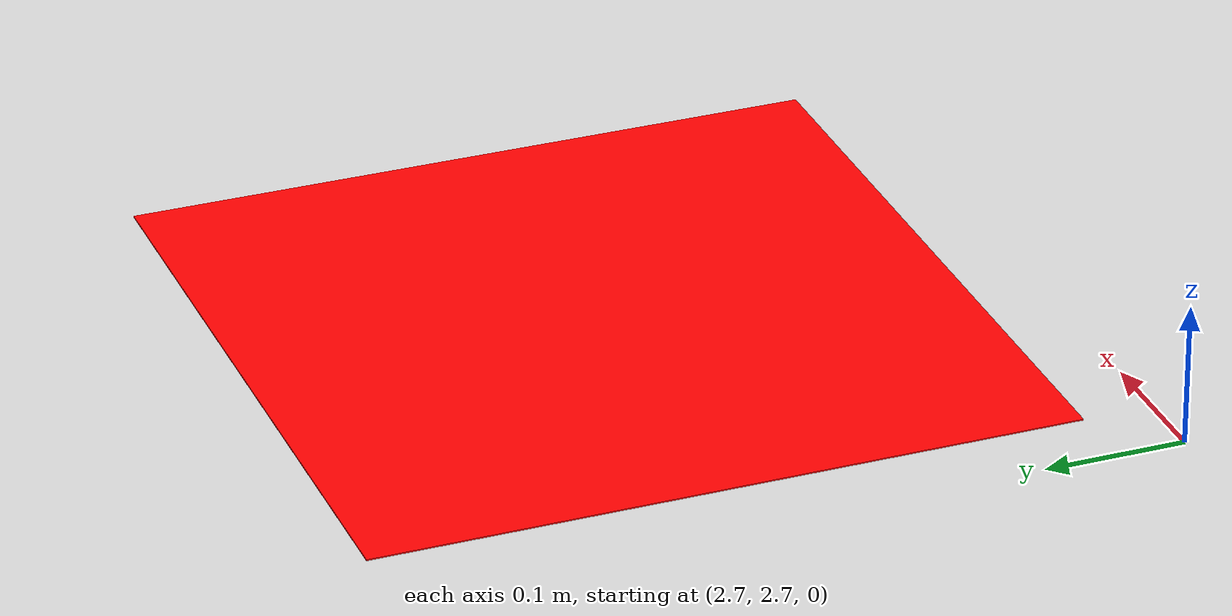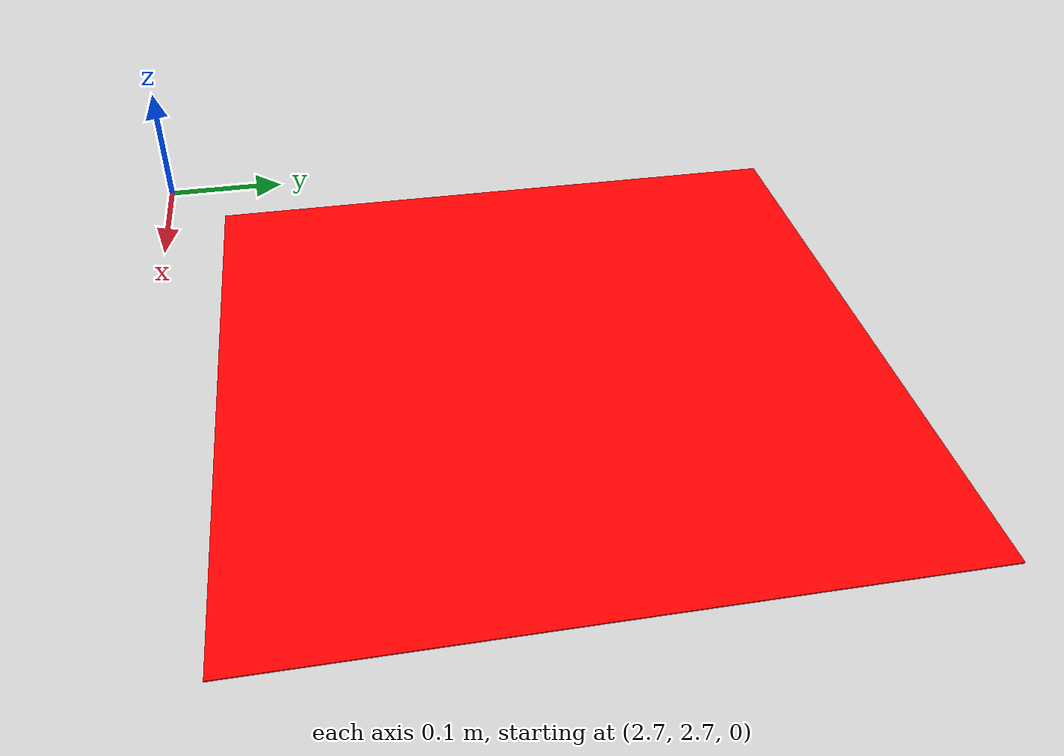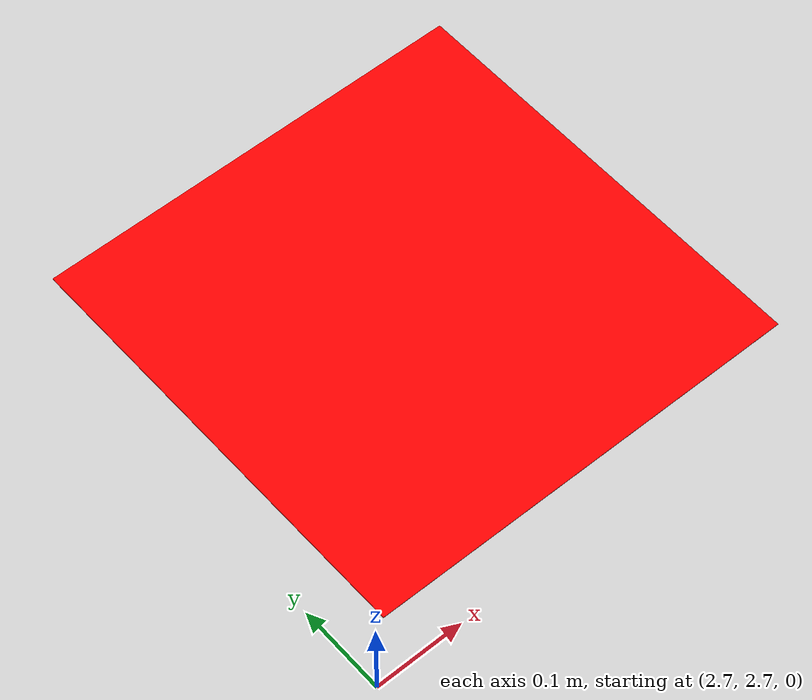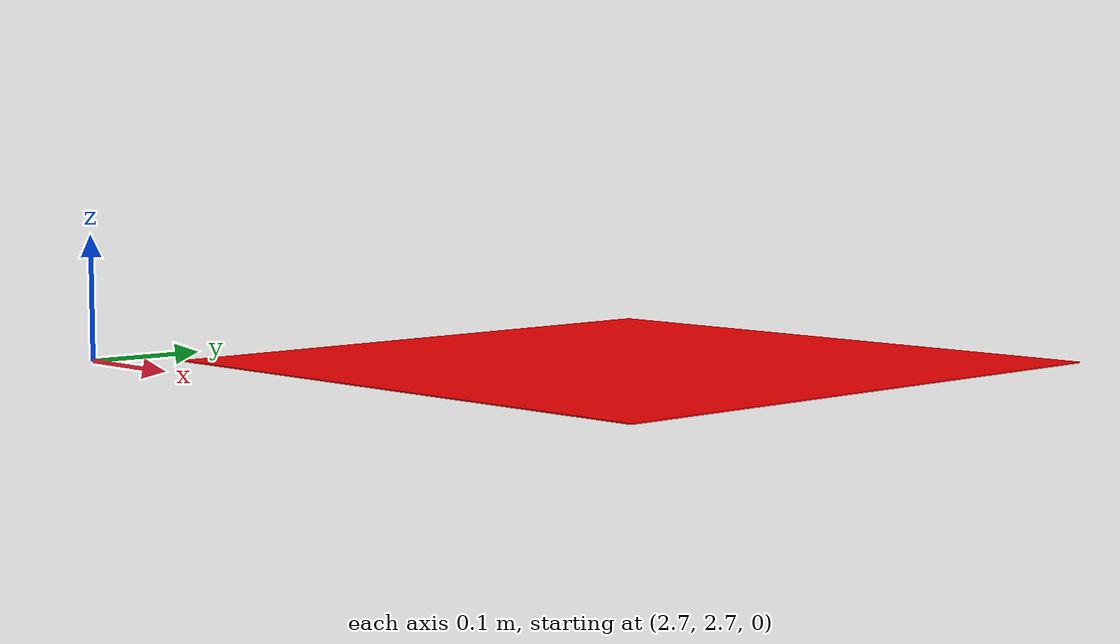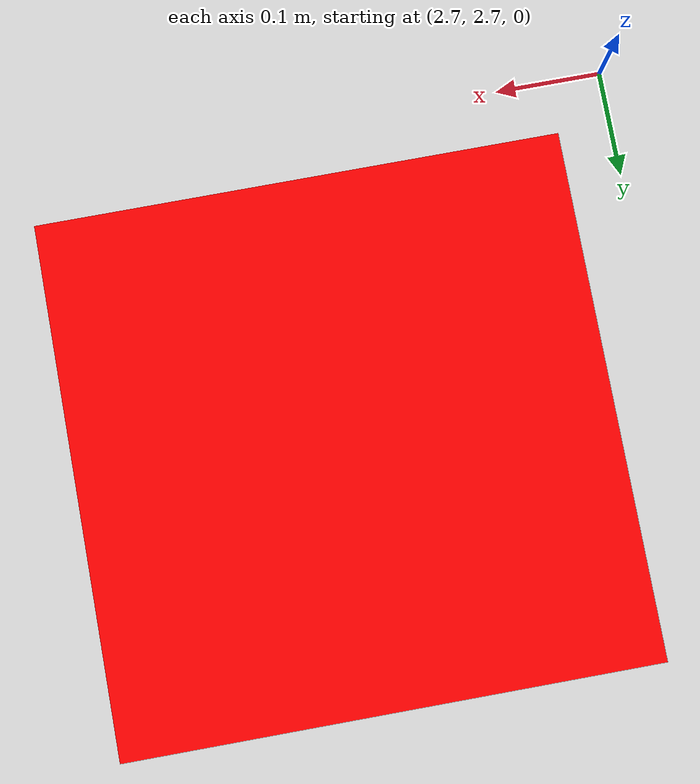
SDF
<?xml version='1.0'?>
<sdf version='1.6'>
  <model name='goal_box'>
    <pose frame=''>3 3 0 0 -0 -1.5708</pose>
    <link name='goal_box'>
      <visual name='goal_box'>
        <pose frame=''>0 0 0.0005 0 -0 0</pose>
        <geometry>
          <box>
            <size>0.5 0.5 0.001</size>
          </box>
        </geometry>
        <material>
          <script>
            <uri>file://media/materials/scripts/gazebo.material</uri>
            <name>Gazebo/Grey</name>
          </script>
          <ambient>1 0 0 0 1</ambient>
        </material>
      </visual>
      <pose frame=''>0 0 0 0 -0 0</pose>
    </link>
    <static>1</static>
  </model>
</sdf>
